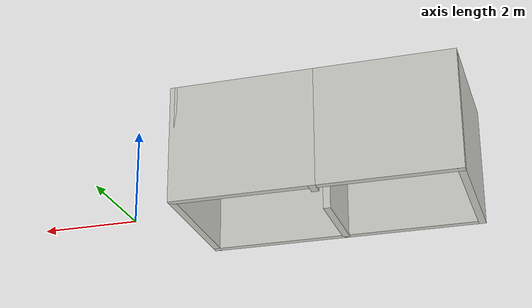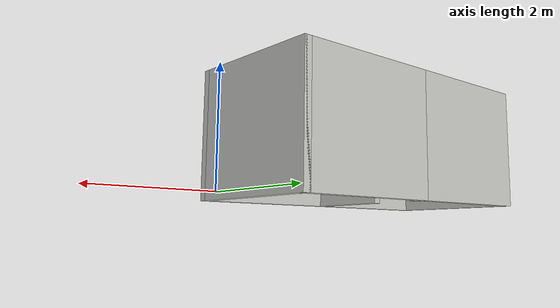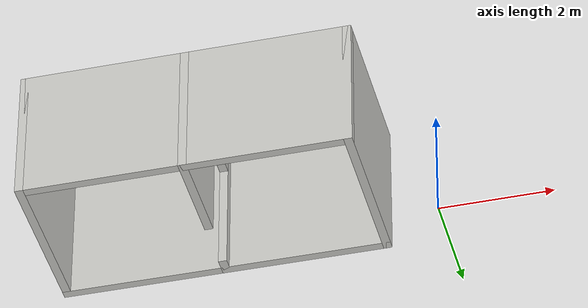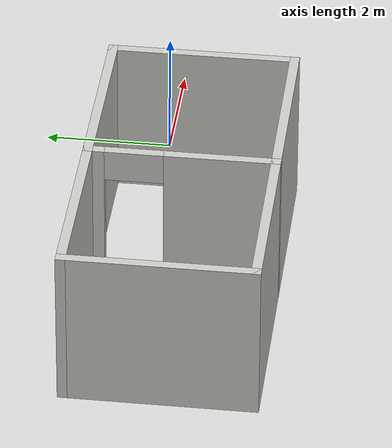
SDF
<?xml version='1.0'?>
<sdf version='1.7'>
  <model name='world'>
    <pose>-3.42305 -0.655804 0 0 -0 0</pose>
    <link name='Wall_0'>
      <collision name='Wall_0_Collision'>
        <geometry>
          <box>
            <size>3 0.15 2.5</size>
          </box>
        </geometry>
        <pose>0 0 1.25 0 -0 0</pose>
      </collision>
      <visual name='Wall_0_Visual'>
        <pose>0 0 1.25 0 -0 0</pose>
        <geometry>
          <box>
            <size>3 0.15 2.5</size>
          </box>
        </geometry>
        <material>
          <script>
            <uri>file://media/materials/scripts/gazebo.material</uri>
            <name>Gazebo/CeilingTiled</name>
          </script>
          <ambient>1 1 1 1</ambient>
        </material>
        <meta>
          <layer>0</layer>
        </meta>
      </visual>
      <pose>0.926949 1.425 0 0 -0 0</pose>
    </link>
    <link name='Wall_1'>
      <collision name='Wall_1_Collision'>
        <geometry>
          <box>
            <size>3 0.15 2.5</size>
          </box>
        </geometry>
        <pose>0 0 1.25 0 -0 0</pose>
      </collision>
      <visual name='Wall_1_Visual'>
        <pose>0 0 1.25 0 -0 0</pose>
        <geometry>
          <box>
            <size>3 0.15 2.5</size>
          </box>
        </geometry>
        <material>
          <script>
            <uri>file://media/materials/scripts/gazebo.material</uri>
            <name>Gazebo/CeilingTiled</name>
          </script>
          <ambient>1 1 1 1</ambient>
        </material>
        <meta>
          <layer>0</layer>
        </meta>
      </visual>
      <pose>2.35195 0 0 0 -0 -1.5708</pose>
    </link>
    <link name='Wall_2'>
      <collision name='Wall_2_Collision'>
        <geometry>
          <box>
            <size>3 0.15 2.5</size>
          </box>
        </geometry>
        <pose>0 0 1.25 0 -0 0</pose>
      </collision>
      <visual name='Wall_2_Visual'>
        <pose>0 0 1.25 0 -0 0</pose>
        <geometry>
          <box>
            <size>3 0.15 2.5</size>
          </box>
        </geometry>
        <material>
          <script>
            <uri>file://media/materials/scripts/gazebo.material</uri>
            <name>Gazebo/CeilingTiled</name>
          </script>
          <ambient>1 1 1 1</ambient>
        </material>
        <meta>
          <layer>0</layer>
        </meta>
      </visual>
      <pose>0.926949 -1.425 0 0 -0 3.14159</pose>
    </link>
    <link name='Wall_3'>
      <pose>-0.498052 0 0 0 -0 1.5708</pose>
      <visual name='Wall_3_Visual_0'>
        <pose>-0.614488 0 1.25 0 -0 0</pose>
        <geometry>
          <box>
            <size>1.77103 0.15 2.5</size>
          </box>
        </geometry>
        <material>
          <script>
            <uri>file://media/materials/scripts/gazebo.material</uri>
            <name>Gazebo/CeilingTiled</name>
          </script>
          <ambient>1 1 1 1</ambient>
        </material>
        <meta>
          <layer>0</layer>
        </meta>
      </visual>
      <collision name='Wall_3_Collision_0'>
        <geometry>
          <box>
            <size>1.77103 0.15 2.5</size>
          </box>
        </geometry>
        <pose>-0.614488 0 1.25 0 -0 0</pose>
      </collision>
      <visual name='Wall_3_Visual_1'>
        <pose>1.33551 0 1.25 0 -0 0</pose>
        <geometry>
          <box>
            <size>0.328975 0.15 2.5</size>
          </box>
        </geometry>
        <material>
          <script>
            <uri>file://media/materials/scripts/gazebo.material</uri>
            <name>Gazebo/CeilingTiled</name>
          </script>
          <ambient>1 1 1 1</ambient>
        </material>
        <meta>
          <layer>0</layer>
        </meta>
      </visual>
      <collision name='Wall_3_Collision_1'>
        <geometry>
          <box>
            <size>0.328975 0.15 2.5</size>
          </box>
        </geometry>
        <pose>1.33551 0 1.25 0 -0 0</pose>
      </collision>
      <visual name='Wall_3_Visual_2'>
        <pose>0.721025 0 2.25 0 -0 0</pose>
        <geometry>
          <box>
            <size>0.9 0.15 0.5</size>
          </box>
        </geometry>
        <material>
          <script>
            <uri>file://media/materials/scripts/gazebo.material</uri>
            <name>Gazebo/CeilingTiled</name>
          </script>
          <ambient>1 1 1 1</ambient>
        </material>
        <meta>
          <layer>0</layer>
        </meta>
      </visual>
      <collision name='Wall_3_Collision_2'>
        <geometry>
          <box>
            <size>0.9 0.15 0.5</size>
          </box>
        </geometry>
        <pose>0.721025 0 2.25 0 -0 0</pose>
      </collision>
    </link>
    <link name='Wall_5'>
      <collision name='Wall_5_Collision'>
        <geometry>
          <box>
            <size>3 0.15 2.5</size>
          </box>
        </geometry>
        <pose>0 0 1.25 0 -0 0</pose>
      </collision>
      <visual name='Wall_5_Visual'>
        <pose>0 0 1.25 0 -0 0</pose>
        <geometry>
          <box>
            <size>3 0.15 2.5</size>
          </box>
        </geometry>
        <material>
          <script>
            <uri>file://media/materials/scripts/gazebo.material</uri>
            <name>Gazebo/CeilingTiled</name>
          </script>
          <ambient>1 1 1 1</ambient>
        </material>
        <meta>
          <layer>0</layer>
        </meta>
      </visual>
      <pose>-1.92305 1.425 0 0 -0 3.14159</pose>
    </link>
    <link name='Wall_6'>
      <collision name='Wall_6_Collision'>
        <geometry>
          <box>
            <size>3 0.15 2.5</size>
          </box>
        </geometry>
        <pose>0 0 1.25 0 -0 0</pose>
      </collision>
      <visual name='Wall_6_Visual'>
        <pose>0 0 1.25 0 -0 0</pose>
        <geometry>
          <box>
            <size>3 0.15 2.5</size>
          </box>
        </geometry>
        <material>
          <script>
            <uri>file://media/materials/scripts/gazebo.material</uri>
            <name>Gazebo/CeilingTiled</name>
          </script>
          <ambient>1 1 1 1</ambient>
        </material>
        <meta>
          <layer>0</layer>
        </meta>
      </visual>
      <pose>-3.34805 0 0 0 -0 -1.5708</pose>
    </link>
    <link name='Wall_7'>
      <collision name='Wall_7_Collision'>
        <geometry>
          <box>
            <size>3 0.15 2.5</size>
          </box>
        </geometry>
        <pose>0 0 1.25 0 -0 0</pose>
      </collision>
      <visual name='Wall_7_Visual'>
        <pose>0 0 1.25 0 -0 0</pose>
        <geometry>
          <box>
            <size>3 0.15 2.5</size>
          </box>
        </geometry>
        <material>
          <script>
            <uri>file://media/materials/scripts/gazebo.material</uri>
            <name>Gazebo/CeilingTiled</name>
          </script>
          <ambient>1 1 1 1</ambient>
        </material>
        <meta>
          <layer>0</layer>
        </meta>
      </visual>
      <pose>-1.92305 -1.425 0 0 -0 0</pose>
    </link>
    <static>1</static>
  </model>
</sdf>
